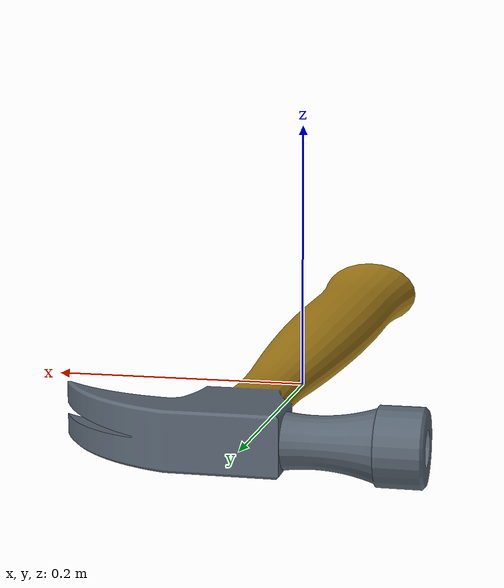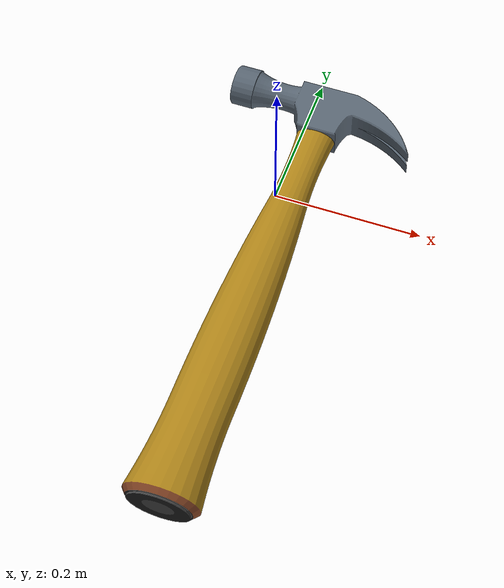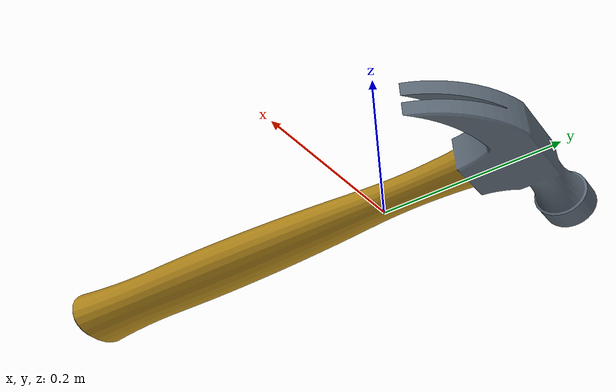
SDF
<?xml version="1.0" ?>
<sdf version="1.5">
  <model name="hammer">
    <static>true</static>
    <link name="link">
      <collision name="collision">
        <geometry>
          <mesh>
            <uri>model://Hammer/meshes/hammer.dae</uri>
            <scale>2 2 2</scale>
          </mesh>
        </geometry>
      </collision>
      <visual name="visual">
        <geometry>
          <mesh>
            <uri>model://Hammer/meshes/hammer.dae</uri>
            <scale>2 2 2</scale>
          </mesh>
        </geometry>
      </visual>
    </link>
  </model>
</sdf>
